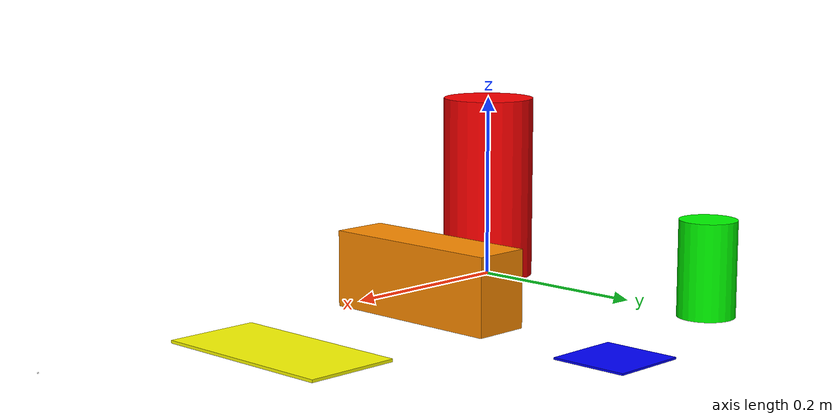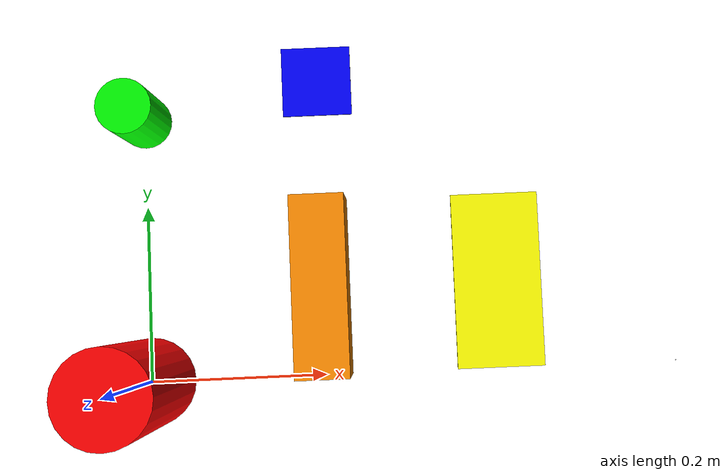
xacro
<?xml version="1.0" encoding="UTF-8"?>
<robot xmlns:xacro="http://www.ros.org/wiki/xacro" name="common_macro_test">

    <xacro:include filename="$(find bam_descriptions)/urdf/common.xacro" />

    <!-- Test 1: cylinder_tube macro -->
        <xacro:cylinder_tube_link
            name="test_cylinder_tube"
            outer_radius="0.05"
            inner_radius="0.04"
            length="0.2"
            density="2700"
            origin_offset="${0.2/2}"
            material="Red"/>

    <!-- Test 2: rectangular_tube macro -->
        <xacro:rectangular_tube_link
            name="test_rectangular_tube"
            width="0.06"
            length="0.2"
            height="0.08"
            wall_thickness="0.005"
            density="2700"
            origin_offset="${0.2/2}"
            material="Orange"/>

    <!-- Test 3: rectangular_plate macro -->
    <xacro:rectangular_plate_link
        name="test_rectangular_plate"
        width="0.1"
        length="0.2"
        plate_thickness="0.003"
        density="2700"
        origin_offset="${0.2/2}"
        material="Yellow"/>

    <!-- Test 4: dummy_link macro -->
    <link name="test_dummy_link">
        <xacro:dummy_link/>
    </link>

    <!-- Test 5: cylinder with explicit mass -->
        <xacro:cylinder_tube_link
            name="test_cylinder_explicit_mass"
            outer_radius="0.03"
            inner_radius="0.025"
            length="0.1"
            density="2700"
            origin_offset="0.05"
            mass="0.5"
            material="Green"/>

    <!-- Test 6: rectangular_plate with explicit mass -->
        <xacro:rectangular_plate_link
            name="test_plate_explicit_mass"
            width="0.08"
            length="0.08"
            plate_thickness="0.002"
            density="2700"
            origin_offset="0.04"
            mass="0.1"
            material="Blue"/>

    <!-- Add joints to connect links to avoid warnings -->
    <link name="base_link"/>

    <joint name="base_link_to_cylinder" type="fixed">
        <parent link="base_link"/>
        <child link="test_cylinder_tube"/>
        <origin xyz="0 0 0" rpy="0 0 0"/>
    </joint>

    <joint name="base_link_to_rect_tube" type="fixed">
        <parent link="base_link"/>
        <child link="test_rectangular_tube"/>
        <origin xyz="0.2 0 0" rpy="0 0 0"/>
    </joint>

    <joint name="base_link_to_plate" type="fixed">
        <parent link="base_link"/>
        <child link="test_rectangular_plate"/>
        <origin xyz="0.4 0 0" rpy="0 0 0"/>
    </joint>

    <joint name="base_link_to_dummy" type="fixed">
        <parent link="base_link"/>
        <child link="test_dummy_link"/>
        <origin xyz="0.6 0 0" rpy="0 0 0"/>
    </joint>

    <joint name="base_link_to_cylinder_explicit" type="fixed">
        <parent link="base_link"/>
        <child link="test_cylinder_explicit_mass"/>
        <origin xyz="0 0.3 0" rpy="0 0 0"/>
    </joint>

    <joint name="base_link_to_plate_explicit" type="fixed">
        <parent link="base_link"/>
        <child link="test_plate_explicit_mass"/>
        <origin xyz="0.2 0.3 0" rpy="0 0 0"/>
    </joint>

</robot>

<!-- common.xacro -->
<robot xmlns:xacro="http://www.ros.org/wiki/xacro">

  <xacro:property name="deg2rad" value="${pi/180}"/>
  <xacro:property name="rev2rad" value="${2*pi}"/>
  <xacro:property name="inch2m" value="${25.4/1000}"/>
  <xacro:property name="mm2m" value="${1/1000}"/>

  <xacro:macro name="cylinder_tube_link" params="name outer_radius inner_radius length density origin_offset mass=-1 material='StoglRobotics/LightGrey'">
    <!-- Length goes along z axis -->

      <link name="${name}">

        <xacro:if value="${mass == -1}">
          <xacro:property name="outer_area" value="${outer_radius * outer_radius * pi}"/>
          <xacro:property name="inner_area" value="${inner_radius * inner_radius * pi}"/>
          <xacro:property name="volume" value="${length * (outer_area - inner_area)}"/>
          <xacro:property name="mass" value="${volume * density}"/>
        </xacro:if>

        <visual>
          <origin xyz="0 0 ${origin_offset}" rpy="0 0 0"/>
          <geometry>
              <cylinder length="${length}" radius="${outer_radius}"/>
          </geometry>
          <material name="${material}"/>
        </visual>

        <collision>
          <origin xyz="0 0 ${origin_offset}" rpy="0 0 0"/>
          <geometry>
              <cylinder length="${length}" radius="${outer_radius}"/>
          </geometry>
        </collision>

        <xacro:cylinder_inertial length="${length}" outer_radius="${outer_radius}" inner_radius="${inner_radius}" mass="${mass}" origin_xyz="0 0 ${origin_offset}"/>

      </link>
  </xacro:macro>

  <xacro:macro name="rectangular_tube_link"
      params="name width length height wall_thickness density origin_offset mass=-1 material='StoglRobotics/LightGrey'"> -->

      <!-- Length goes along y, width goes along x, height goes along z -->

      <!-- length goes from hole to hole, while link_total_length goes from outer edge to outer edge. To center link around holes, add width/2 to both ends -->
      <xacro:if value="${mass == -1}">
        <xacro:property name="outer_area" value="${width * height}"/>
        <xacro:property name="inner_area" value="${(width - 2*wall_thickness) * (height - 2*wall_thickness)}"/>
        <xacro:property name="volume" value="${length * (outer_area - inner_area)}"/>
        <xacro:property name="mass" value="${volume * density}"/>
      </xacro:if>

      <link name="${name}">

        <!-- It may make more sense to have origin in center of thickness, but when you export as cade, usally is done from edge -->
        <visual>
            <origin xyz="0 ${origin_offset} ${height/2}" rpy="0 0 0"/>
            <geometry>
                <box size="${width} ${length} ${height}"/>
            </geometry>
            <material name="${material}"/>
        </visual>

        <collision>
            <origin xyz="0 ${origin_offset} ${height/2}" rpy="0 0 0"/>
            <geometry>
                <box size="${width} ${length} ${height}"/>
            </geometry>
        </collision>

        <xacro:solid_cuboid_inertial width="${width}" height="${length}" depth="${height}" mass="${mass}" origin_xyz="0 ${origin_offset} ${height/2}"/>
      </link>

  </xacro:macro>

  <xacro:macro name="rectangular_plate_link" params="name width length plate_thickness density origin_offset mass=-1 material='StoglRobotics/LightGrey'">
      <!-- Origin offset is usally length/2 or length/2 + width/2 + width/2  -->
      <!-- length goes from hole to hole, while link_total_length goes from outer edge to outer edge. To center link around holes, add width/2 to both ends -->

      <!-- Length goes along y, width goes along x, thickness goes along z -->

      <xacro:if value="${mass == -1}">
        <xacro:property name="volume" value="${length * width * plate_thickness}"/>
        <xacro:property name="mass" value="${volume * density}"/>
      </xacro:if>

      <!-- It may make more sense to have origin in center of thickness, but when you export as cade, usally is done from edge -->
      <link name="${name}">

      <visual>
          <origin xyz="0 ${origin_offset} ${plate_thickness/2}" rpy="0 0 0"/>
          <geometry>
              <box size="${width} ${length} ${plate_thickness}"/>
          </geometry>
          <material name="${material}"/>
      </visual>

      <collision>
          <origin xyz="0 ${origin_offset} ${plate_thickness/2}" rpy="0 0 0"/>
          <geometry>
              <box size="${width} ${length} ${plate_thickness}"/>
          </geometry>
      </collision>

      <xacro:solid_cuboid_inertial width="${width}" height="${length}" depth="${plate_thickness}" mass="${mass}" origin_xyz="0 ${origin_offset} ${plate_thickness/2}"/>
      </link>

  </xacro:macro>

  <!-- https://en.wikipedia.org/wiki/List_of_moments_of_inertia#:~:text=Solid%20cuboid%20of%20width -->
  <!-- Inertia properties for wrist_link, scoped to this macro only -->
  <!-- Width goes along x, height goes along y, depth goes along z -->
  <xacro:macro name="solid_cuboid_inertial" params="width height depth mass origin_xyz">
      <xacro:property name="inertia_xx" value="${(1/12) * mass * (height * height + depth * depth)}"/>
      <xacro:property name="inertia_yy" value="${(1/12) * mass * (width * width + depth * depth)}"/>
      <xacro:property name="inertia_zz" value="${(1/12) * mass * (width * width + height * height)}"/>
      <inertial>
          <origin xyz="${origin_xyz}"/>
          <mass value="${mass}"/>
          <inertia ixx="${inertia_xx}" ixy="0" ixz="0"
                    iyy="${inertia_yy}" iyz="0"
                    izz="${inertia_zz}"/>
      </inertial>
  </xacro:macro>

  <!-- https://en.wikipedia.org/wiki/List_of_moments_of_inertia#:~:text=%5D-,Solid%20cylinder%20of,-radius%20r%2C%20height -->
  <!-- Inertia properties for motor block, scoped to this macro only -->
  <!-- I initally thought it should be outer_radius - inner_radius, but actually a hollow cylinder should have a higher interia! as more mass further away -->
  <xacro:macro name="cylinder_inertial" params="length outer_radius mass origin_xyz inner_radius=0">
      <xacro:property name="inertia_xx" value="${(1/12) * mass * (3*(outer_radius*outer_radius + inner_radius*inner_radius) + length*length)}"/>
      <xacro:property name="inertia_yy" value="${(1/12) * mass * (3*(outer_radius*outer_radius + inner_radius*inner_radius) + length*length)}"/>
      <xacro:property name="inertia_zz" value="${0.5*mass*(outer_radius*outer_radius + inner_radius*inner_radius)}"/>
      <inertial>
          <origin xyz="${origin_xyz}"/>
          <mass value="${mass}"/>
          <inertia ixx="${inertia_xx}" ixy="0" ixz="0"
                    iyy="${inertia_yy}" iyz="0"
                    izz="${inertia_zz}"/>
      </inertial>
  </xacro:macro>

<xacro:macro name="dummy_inertial">
<!-- Super small interia to not effect dynamics and small rviz interia box -->
    <inertial>
        <mass value="0.0001"/>
        <origin xyz="0 0 0" rpy="0 0 0"/>
        <inertia
            ixx="0.001" ixy="0.00001" ixz="0.00001"
            iyy="0.001" iyz="0.00001"
            izz="0.001"/>
    </inertial>
</xacro:macro>

<xacro:macro name="dummy_link">

  <!-- Small visual box so that link can be turned off in rviz -->
  <visual>
    <origin xyz="0 0 0" rpy="0 0 0"/>
    <geometry>
      <box size="0.001 0.001 0.001"/>
    </geometry>
    <material name="transparent_gray">
      <color rgba="0.5 0.5 0.5 0.1"/>
    </material>
  </visual>

  <xacro:dummy_inertial/>

</xacro:macro>

  <material name="StoglRobotics/Violet">
    <color rgba="${102/255} ${46/255} ${145/255} 1.0"/>
    <ambient>1 0 0 1</ambient>
    <diffuse>1 0 0 1</diffuse>
    <specular>0.1 0.1 0.1 1</specular>
    <emissive>0 0 0 0</emissive>
  </material>

  <material name="StoglRobotics/DarkGrey">
    <color rgba="${51/255} ${51/255} ${51/255} 1.0"/>
    <ambient>1 0 0 1</ambient>
    <diffuse>1 0 0 1</diffuse>
    <specular>0.1 0.1 0.1 1</specular>
    <emissive>0 0 0 0</emissive>
  </material>

  <material name="StoglRobotics/LightGrey">
    <color rgba="${194/255} ${194/255} ${194/255} 1.0"/>
    <ambient>1 0 0 1</ambient>
    <diffuse>1 0 0 1</diffuse>
    <specular>0.1 0.1 0.1 1</specular>
    <emissive>0 0 0 0</emissive>
  </material>

  <material name="Ghost">
    <color rgba="${194/255} ${194/255} ${194/255} 0.5"/>
    <ambient>1 0 0 1</ambient>
    <diffuse>1 0 0 1</diffuse>
    <specular>0.1 0.1 0.1 1</specular>
    <emissive>0 0 0 0</emissive>
  </material>

  <material name="Black">
    <color rgba="${0/255} ${0/255} ${0/255} 1"/>
    <ambient>1 0 0 1</ambient>
    <diffuse>1 0 0 1</diffuse>
    <specular>0.1 0.1 0.1 1</specular>
    <emissive>0 0 0 0</emissive>
  </material>

  <material name="White">
    <color rgba="${255/255} ${255/255} ${255/255} 1"/>
    <ambient>1 0 0 1</ambient>
    <diffuse>1 0 0 1</diffuse>
    <specular>0.1 0.1 0.1 1</specular>
    <emissive>0 0 0 0</emissive>
  </material>

  <material name="Red">
    <color rgba="1.0 0.0 0.0 1.0"/>
    <ambient>1 0 0 1</ambient>
    <diffuse>1 0 0 1</diffuse>
    <specular>0.1 0.1 0.1 1</specular>
    <emissive>0 0 0 0</emissive>
  </material>

  <material name="Orange">
    <color rgba="1.0 0.55 0.0 1.0"/>
    <ambient>1 0.5 0 1</ambient>
    <diffuse>1 0.5 0 1</diffuse>
    <specular>0.1 0.1 0.1 1</specular>
    <emissive>0 0 0 0</emissive>
  </material>

  <material name="Yellow">
    <color rgba="1.0 1.0 0.0 1.0"/>
    <ambient>1 1 0 1</ambient>
    <diffuse>1 1 0 1</diffuse>
    <specular>0.1 0.1 0.1 1</specular>
    <emissive>0 0 0 0</emissive>
  </material>

  <material name="Green">
    <color rgba="0.0 1.0 0.0 1.0"/>
    <ambient>0 1 0 1</ambient>
    <diffuse>0 1 0 1</diffuse>
    <specular>0.1 0.1 0.1 1</specular>
    <emissive>0 0 0 0</emissive>
  </material>

  <material name="Blue">
    <color rgba="0.0 0.0 1.0 1.0"/>
    <ambient>0 0 1 1</ambient>
    <diffuse>0 0 1 1</diffuse>
    <specular>0.1 0.1 0.1 1</specular>
    <emissive>0 0 0 0</emissive>
  </material>

  <material name="Indigo">
    <color rgba="0.29 0.0 0.51 1.0"/>
    <ambient>0.25 0 0.45 1</ambient>
    <diffuse>0.25 0 0.45 1</diffuse>
    <specular>0.1 0.1 0.1 1</specular>
    <emissive>0 0 0 0</emissive>
  </material>

  <material name="Violet">
    <color rgba="0.56 0.0 1.0 1.0"/>
    <ambient>0.5 0 1 1</ambient>
    <diffuse>0.5 0 1 1</diffuse>
    <specular>0.1 0.1 0.1 1</specular>
    <emissive>0 0 0 0</emissive>
  </material>

</robot>
